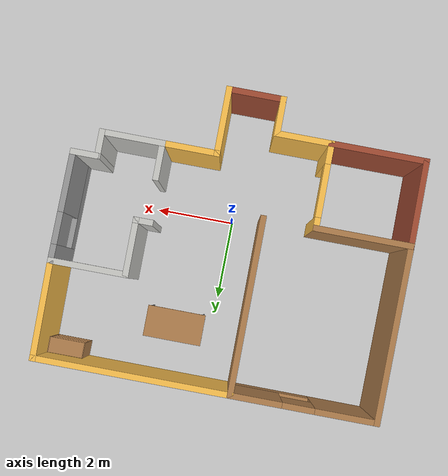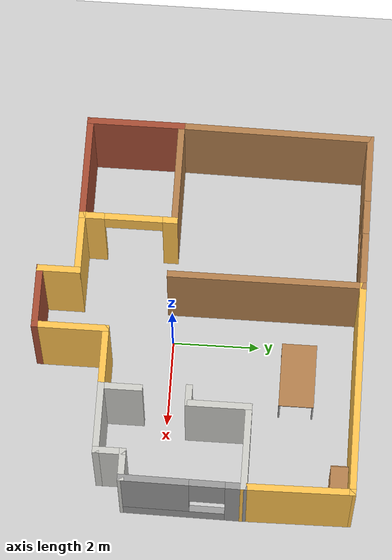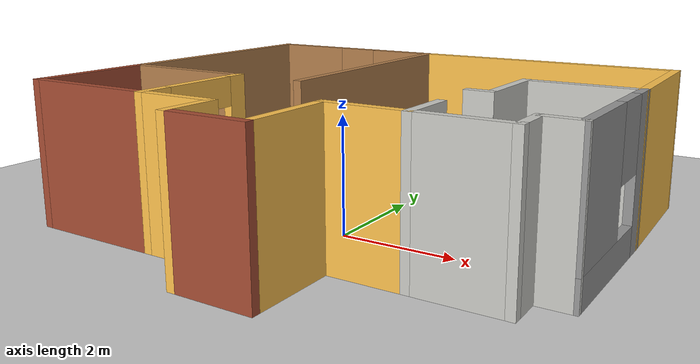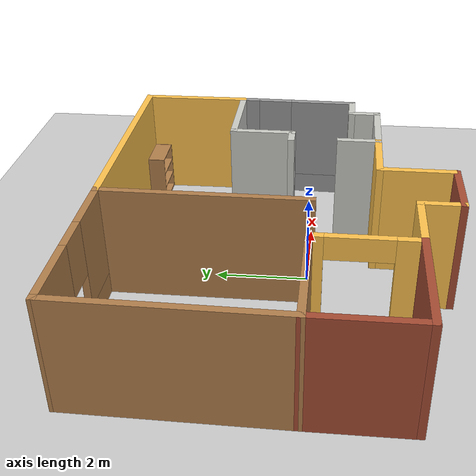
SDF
<sdf version="1.6">
 <world name="default">
  <light name="sun" type="directional">
   <pose>0 0 10 0 -0 0</pose>
   <diffuse>0.8 0.8 0.8 1</diffuse>
   <specular>0.2 0.2 0.2 1</specular>
   <attenuation>
    <range>1000</range>
    <constant>0.9</constant>
    <linear>0.01</linear>
    <quadratic>0.001</quadratic>
   </attenuation>
   <direction>-0.5 0.1 -0.9</direction>
  </light>
  <model name="ground_plane">
   <static>1</static>
   <link name="link">
    <collision name="collision">
     <geometry><plane><normal>0 0 1</normal><size>100 100</size></plane></geometry>
     <surface><friction><ode><mu>100</mu><mu2>50</mu2></ode></friction></surface>
    </collision>
    <visual name="visual">
     <cast_shadows>0</cast_shadows>
     <geometry><plane><normal>0 0 1</normal><size>100 100</size></plane></geometry>
     <material>
      <script><uri>file://media/materials/scripts/gazebo.material</uri><name>Gazebo/Grey</name></script>
     </material>
    </visual>
   </link>
  </model>
  <gravity>0 0 -9.8</gravity>
  <magnetic_field>6e-06 2.3e-05 -4.2e-05</magnetic_field>
  <atmosphere type="adiabatic"/>
  <physics name="default_physics" default="0" type="ode">
   <max_step_size>0.001</max_step_size>
   <real_time_factor>1</real_time_factor>
   <real_time_update_rate>1000</real_time_update_rate>
  </physics>
  <scene><ambient>0.4 0.4 0.4 1</ambient><background>0.7 0.7 0.7 1</background><shadows>1</shadows></scene>
  <audio><device>default</device></audio>
  <spherical_coordinates>
   <surface_model>EARTH_WGS84</surface_model>
   <latitude_deg>0</latitude_deg>
   <longitude_deg>0</longitude_deg>
   <elevation>0</elevation>
   <heading_deg>0</heading_deg>
  </spherical_coordinates>
  <model name="new_world">
   <pose>-0.143743 0.609384 0 0 -0 0</pose>
   <link name="Wall_0">
    <pose>-2.41461 3.64954 0 0 -0 0</pose>
    <visual name="Wall_0_Visual_0">
     <pose>-1.07287 0 1.25 0 -0 0</pose>
     <geometry><box><size>1.60426 0.15 2.5</size></box></geometry>
     <material>
      <script><uri>file://media/materials/scripts/gazebo.material</uri><name>Gazebo/Wood</name></script>
      <ambient>1 1 1 1</ambient>
     </material>
     <meta><layer>0</layer></meta>
    </visual>
    <collision name="Wall_0_Collision_0">
     <geometry><box><size>1.60426 0.15 2.5</size></box></geometry>
     <pose>-1.07287 0 1.25 0 -0 0</pose>
    </collision>
    <visual name="Wall_0_Visual_1">
     <pose>0.802129 0 0.25 0 -0 0</pose>
     <geometry><box><size>2.14574 0.15 0.5</size></box></geometry>
     <material>
      <script><uri>file://media/materials/scripts/gazebo.material</uri><name>Gazebo/Wood</name></script>
      <ambient>1 1 1 1</ambient>
     </material>
     <meta><layer>0</layer></meta>
    </visual>
    <collision name="Wall_0_Collision_1">
     <geometry><box><size>2.14574 0.15 0.5</size></box></geometry>
     <pose>0.802129 0 0.25 0 -0 0</pose>
    </collision>
    <visual name="Wall_0_Visual_2">
     <pose>1.20213 0 1.5 0 -0 0</pose>
     <geometry><box><size>1.34574 0.15 2</size></box></geometry>
     <material>
      <script><uri>file://media/materials/scripts/gazebo.material</uri><name>Gazebo/Wood</name></script>
      <ambient>1 1 1 1</ambient>
     </material>
     <meta><layer>0</layer></meta>
    </visual>
    <collision name="Wall_0_Collision_2">
     <geometry><box><size>1.34574 0.15 2</size></box></geometry>
     <pose>1.20213 0 1.5 0 -0 0</pose>
    </collision>
    <visual name="Wall_0_Visual_3">
     <pose>0.129259 0 1.9 0 -0 0</pose>
     <geometry><box><size>0.8 0.15 1.2</size></box></geometry>
     <material>
      <script><uri>file://media/materials/scripts/gazebo.material</uri><name>Gazebo/Wood</name></script>
      <ambient>1 1 1 1</ambient>
     </material>
     <meta><layer>0</layer></meta>
    </visual>
    <collision name="Wall_0_Collision_3">
     <geometry><box><size>0.8 0.15 1.2</size></box></geometry>
     <pose>0.129259 0 1.9 0 -0 0</pose>
    </collision>
   </link>
   <link name="Wall_1">
    <collision name="Wall_1_Collision">
     <geometry><box><size>5 0.15 2.5</size></box></geometry>
     <pose>0 0 1.25 0 -0 0</pose>
    </collision>
    <visual name="Wall_1_Visual">
     <pose>0 0 1.25 0 -0 0</pose>
     <geometry><box><size>5 0.15 2.5</size></box></geometry>
     <material>
      <script><uri>file://media/materials/scripts/gazebo.material</uri><name>Gazebo/Grey</name></script>
      <ambient>1 0.764706 0.305882 1</ambient>
     </material>
     <meta><layer>0</layer></meta>
    </visual>
    <pose>1.81039 3.64954 0 0 -0 0</pose>
   </link>
   <link name="Wall_10">
    <collision name="Wall_10_Collision">
     <geometry><box><size>2.5 0.15 2.5</size></box></geometry>
     <pose>0 0 1.25 0 -0 0</pose>
    </collision>
    <visual name="Wall_10_Visual">
     <pose>0 0 1.25 0 -0 0</pose>
     <geometry><box><size>2.5 0.15 2.5</size></box></geometry>
     <material>
      <script><uri>file://media/materials/scripts/gazebo.material</uri><name>Gazebo/Bricks</name></script>
      <ambient>1 1 1 1</ambient>
     </material>
     <meta><layer>0</layer></meta>
    </visual>
    <pose>-3.08961 -2.80045 0 0 -0 3.14159</pose>
   </link>
   <link name="Wall_11">
    <collision name="Wall_11_Collision">
     <geometry><box><size>2.25 0.15 2.5</size></box></geometry>
     <pose>0 0 1.25 0 -0 0</pose>
    </collision>
    <visual name="Wall_11_Visual">
     <pose>0 0 1.25 0 -0 0</pose>
     <geometry><box><size>2.25 0.15 2.5</size></box></geometry>
     <material>
      <script><uri>file://media/materials/scripts/gazebo.material</uri><name>Gazebo/Bricks</name></script>
      <ambient>1 1 1 1</ambient>
     </material>
     <meta><layer>0</layer></meta>
    </visual>
    <pose>-4.26461 -1.75046 0 0 -0 1.5708</pose>
   </link>
   <link name="Wall_12">
    <collision name="Wall_12_Collision">
     <geometry><box><size>4.50029 0.15 2.5</size></box></geometry>
     <pose>0 0 1.25 0 -0 0</pose>
    </collision>
    <visual name="Wall_12_Visual">
     <pose>0 0 1.25 0 -0 0</pose>
     <geometry><box><size>4.50029 0.15 2.5</size></box></geometry>
     <material>
      <script><uri>file://media/materials/scripts/gazebo.material</uri><name>Gazebo/Wood</name></script>
      <ambient>1 1 1 1</ambient>
     </material>
     <meta><layer>0</layer></meta>
    </visual>
    <pose>-4.23961 1.47454 0 0 -0 1.5593</pose>
   </link>
   <link name="Wall_15">
    <collision name="Wall_15_Collision">
     <geometry><box><size>2.5 0.15 2.5</size></box></geometry>
     <pose>0 0 1.25 0 -0 0</pose>
    </collision>
    <visual name="Wall_15_Visual">
     <pose>0 0 1.25 0 -0 0</pose>
     <geometry><box><size>2.5 0.15 2.5</size></box></geometry>
     <material>
      <script><uri>file://media/materials/scripts/gazebo.material</uri><name>Gazebo/Wood</name></script>
      <ambient>1 1 1 1</ambient>
     </material>
     <meta><layer>0</layer></meta>
    </visual>
    <pose>-3.08961 -0.700455 0 0 -0 0</pose>
   </link>
   <link name="Wall_17">
    <collision name="Wall_17_Collision">
     <geometry><box><size>4.5 0.15 2.5</size></box></geometry>
     <pose>0 0 1.25 0 -0 0</pose>
    </collision>
    <visual name="Wall_17_Visual">
     <pose>0 0 1.25 0 -0 0</pose>
     <geometry><box><size>4.5 0.15 2.5</size></box></geometry>
     <material>
      <script><uri>file://media/materials/scripts/gazebo.material</uri><name>Gazebo/Wood</name></script>
      <ambient>1 1 1 1</ambient>
     </material>
     <meta><layer>0</layer></meta>
    </visual>
    <pose>-0.614608 1.47454 0 0 -0 -1.5708</pose>
   </link>
   <link name="Wall_19">
    <pose>-1.91461 -1.75046 0 0 -0 -1.5708</pose>
    <visual name="Wall_19_Visual_0">
     <pose>-0.952313 0 1.25 0 -0 0</pose>
     <geometry><box><size>0.345374 0.15 2.5</size></box></geometry>
     <material>
      <script><uri>file://media/materials/scripts/gazebo.material</uri><name>Gazebo/Grey</name></script>
      <ambient>1 0.764706 0.305882 1</ambient>
     </material>
     <meta><layer>0</layer></meta>
    </visual>
    <collision name="Wall_19_Collision_0">
     <geometry><box><size>0.345374 0.15 2.5</size></box></geometry>
     <pose>-0.952313 0 1.25 0 -0 0</pose>
    </collision>
    <visual name="Wall_19_Visual_1">
     <pose>0.833759 0 1.25 0 -0 0</pose>
     <geometry><box><size>0.582481 0.15 2.5</size></box></geometry>
     <material>
      <script><uri>file://media/materials/scripts/gazebo.material</uri><name>Gazebo/Grey</name></script>
      <ambient>1 0.764706 0.305882 1</ambient>
     </material>
     <meta><layer>0</layer></meta>
    </visual>
    <collision name="Wall_19_Collision_1">
     <geometry><box><size>0.582481 0.15 2.5</size></box></geometry>
     <pose>0.833759 0 1.25 0 -0 0</pose>
    </collision>
    <visual name="Wall_19_Visual_2">
     <pose>-0.118554 0 2.25 0 -0 0</pose>
     <geometry><box><size>1.32214 0.15 0.5</size></box></geometry>
     <material>
      <script><uri>file://media/materials/scripts/gazebo.material</uri><name>Gazebo/Grey</name></script>
      <ambient>1 0.764706 0.305882 1</ambient>
     </material>
     <meta><layer>0</layer></meta>
    </visual>
    <collision name="Wall_19_Collision_2">
     <geometry><box><size>1.32214 0.15 0.5</size></box></geometry>
     <pose>-0.118554 0 2.25 0 -0 0</pose>
    </collision>
   </link>
   <link name="Wall_21">
    <collision name="Wall_21_Collision">
     <geometry><box><size>1.5 0.15 2.5</size></box></geometry>
     <pose>0 0 1.25 0 -0 0</pose>
    </collision>
    <visual name="Wall_21_Visual">
     <pose>0 0 1.25 0 -0 0</pose>
     <geometry><box><size>1.5 0.15 2.5</size></box></geometry>
     <material>
      <script><uri>file://media/materials/scripts/gazebo.material</uri><name>Gazebo/Grey</name></script>
      <ambient>1 0.764706 0.305882 1</ambient>
     </material>
     <meta><layer>0</layer></meta>
    </visual>
    <pose>1.46039 -2.05045 0 0 -0 0</pose>
   </link>
   <link name="Wall_22">
    <collision name="Wall_22_Collision">
     <geometry><box><size>1.65 0.15 2.5</size></box></geometry>
     <pose>0 0 1.25 0 -0 0</pose>
    </collision>
    <visual name="Wall_22_Visual">
     <pose>0 0 1.25 0 -0 0</pose>
     <geometry><box><size>1.65 0.15 2.5</size></box></geometry>
     <material>
      <script><uri>file://media/materials/scripts/gazebo.material</uri><name>Gazebo/CeilingTiled</name></script>
      <ambient>1 1 1 1</ambient>
     </material>
     <meta><layer>0</layer></meta>
    </visual>
    <pose>2.88539 -2.05045 0 0 -0 0</pose>
   </link>
   <link name="Wall_24">
    <collision name="Wall_24_Collision">
     <geometry><box><size>1 0.15 2.5</size></box></geometry>
     <pose>0 0 1.25 0 -0 0</pose>
    </collision>
    <visual name="Wall_24_Visual">
     <pose>0 0 1.25 0 -0 0</pose>
     <geometry><box><size>1 0.15 2.5</size></box></geometry>
     <material>
      <script><uri>file://media/materials/scripts/gazebo.material</uri><name>Gazebo/CeilingTiled</name></script>
      <ambient>1 1 1 1</ambient>
     </material>
     <meta><layer>0</layer></meta>
    </visual>
    <pose>2.13539 -1.62546 0 0 -0 1.5708</pose>
   </link>
   <link name="Wall_28">
    <collision name="Wall_28_Collision">
     <geometry><box><size>0.5 0.15 2.5</size></box></geometry>
     <pose>0 0 1.25 0 -0 0</pose>
    </collision>
    <visual name="Wall_28_Visual">
     <pose>0 0 1.25 0 -0 0</pose>
     <geometry><box><size>0.5 0.15 2.5</size></box></geometry>
     <material>
      <script><uri>file://media/materials/scripts/gazebo.material</uri><name>Gazebo/CeilingTiled</name></script>
      <ambient>1 1 1 1</ambient>
     </material>
     <meta><layer>0</layer></meta>
    </visual>
    <pose>2.23956 -0.091427 0 0 -0 0</pose>
   </link>
   <link name="Wall_29">
    <collision name="Wall_29_Collision">
     <geometry><box><size>1.5 0.15 2.5</size></box></geometry>
     <pose>0 0 1.25 0 -0 0</pose>
    </collision>
    <visual name="Wall_29_Visual">
     <pose>0 0 1.25 0 -0 0</pose>
     <geometry><box><size>1.5 0.15 2.5</size></box></geometry>
     <material>
      <script><uri>file://media/materials/scripts/gazebo.material</uri><name>Gazebo/CeilingTiled</name></script>
      <ambient>1 1 1 1</ambient>
     </material>
     <meta><layer>0</layer></meta>
    </visual>
    <pose>2.41456 0.583573 0 0 -0 1.5708</pose>
   </link>
   <link name="Wall_3">
    <collision name="Wall_3_Collision">
     <geometry><box><size>0.75 0.15 2.5</size></box></geometry>
     <pose>0 0 1.25 0 -0 0</pose>
    </collision>
    <visual name="Wall_3_Visual">
     <pose>0 0 1.25 0 -0 0</pose>
     <geometry><box><size>0.75 0.15 2.5</size></box></geometry>
     <material>
      <script><uri>file://media/materials/scripts/gazebo.material</uri><name>Gazebo/CeilingTiled</name></script>
      <ambient>1 1 1 1</ambient>
     </material>
     <meta><layer>0</layer></meta>
    </visual>
    <pose>3.93539 -1.45045 0 0 -0 3.14159</pose>
   </link>
   <link name="Wall_35">
    <collision name="Wall_35_Collision">
     <geometry><box><size>2 0.15 2.5</size></box></geometry>
     <pose>0 0 1.25 0 -0 0</pose>
    </collision>
    <visual name="Wall_35_Visual">
     <pose>0 0 1.25 0 -0 0</pose>
     <geometry><box><size>2 0.15 2.5</size></box></geometry>
     <material>
      <script><uri>file://media/materials/scripts/gazebo.material</uri><name>Gazebo/CeilingTiled</name></script>
      <ambient>1 1 1 1</ambient>
     </material>
     <meta><layer>0</layer></meta>
    </visual>
    <pose>3.33956 1.25857 0 0 -0 0</pose>
   </link>
   <link name="Wall_37">
    <collision name="Wall_37_Collision">
     <geometry><box><size>2.54115 0.15 2.5</size></box></geometry>
     <pose>0 0 1.25 0 -0 0</pose>
    </collision>
    <visual name="Wall_37_Visual">
     <pose>0 0 1.25 0 -0 0</pose>
     <geometry><box><size>2.54115 0.15 2.5</size></box></geometry>
     <material>
      <script><uri>file://media/materials/scripts/gazebo.material</uri><name>Gazebo/Grey</name></script>
      <ambient>1 0.764706 0.305882 1</ambient>
     </material>
     <meta><layer>0</layer></meta>
    </visual>
    <pose>4.24997 2.45406 0 0 -0 -1.5586</pose>
   </link>
   <link name="Wall_38">
    <pose>4.24997 -0.095941 0 0 -0 -1.58156</pose>
    <visual name="Wall_38_Visual_0">
     <pose>-1.18879 0 1.25 0 -0 0</pose>
     <geometry><box><size>0.481602 0.15 2.5</size></box></geometry>
     <material>
      <script><uri>file://media/materials/scripts/gazebo.material</uri><name>Gazebo/Grey</name></script>
      <ambient>1 1 1 1</ambient>
     </material>
     <meta><layer>0</layer></meta>
    </visual>
    <collision name="Wall_38_Collision_0">
     <geometry><box><size>0.481602 0.15 2.5</size></box></geometry>
     <pose>-1.18879 0 1.25 0 -0 0</pose>
    </collision>
    <visual name="Wall_38_Visual_1">
     <pose>0.240801 0 0.25 0 -0 0</pose>
     <geometry><box><size>2.37758 0.15 0.5</size></box></geometry>
     <material>
      <script><uri>file://media/materials/scripts/gazebo.material</uri><name>Gazebo/Grey</name></script>
      <ambient>1 1 1 1</ambient>
     </material>
     <meta><layer>0</layer></meta>
    </visual>
    <collision name="Wall_38_Collision_1">
     <geometry><box><size>2.37758 0.15 0.5</size></box></geometry>
     <pose>0.240801 0 0.25 0 -0 0</pose>
    </collision>
    <visual name="Wall_38_Visual_2">
     <pose>0.640801 0 1.5 0 -0 0</pose>
     <geometry><box><size>1.57758 0.15 2</size></box></geometry>
     <material>
      <script><uri>file://media/materials/scripts/gazebo.material</uri><name>Gazebo/Grey</name></script>
      <ambient>1 1 1 1</ambient>
     </material>
     <meta><layer>0</layer></meta>
    </visual>
    <collision name="Wall_38_Collision_2">
     <geometry><box><size>1.57758 0.15 2</size></box></geometry>
     <pose>0.640801 0 1.5 0 -0 0</pose>
    </collision>
    <visual name="Wall_38_Visual_3">
     <pose>-0.54799 0 1.9 0 -0 0</pose>
     <geometry><box><size>0.8 0.15 1.2</size></box></geometry>
     <material>
      <script><uri>file://media/materials/scripts/gazebo.material</uri><name>Gazebo/Grey</name></script>
      <ambient>1 1 1 1</ambient>
     </material>
     <meta><layer>0</layer></meta>
    </visual>
    <collision name="Wall_38_Collision_3">
     <geometry><box><size>0.8 0.15 1.2</size></box></geometry>
     <pose>-0.54799 0 1.9 0 -0 0</pose>
    </collision>
   </link>
   <link name="Wall_4">
    <collision name="Wall_4_Collision">
     <geometry><box><size>0.75 0.15 2.5</size></box></geometry>
     <pose>0 0 1.25 0 -0 0</pose>
    </collision>
    <visual name="Wall_4_Visual">
     <pose>0 0 1.25 0 -0 0</pose>
     <geometry><box><size>0.75 0.15 2.5</size></box></geometry>
     <material>
      <script><uri>file://media/materials/scripts/gazebo.material</uri><name>Gazebo/CeilingTiled</name></script>
      <ambient>1 1 1 1</ambient>
     </material>
     <meta><layer>0</layer></meta>
    </visual>
    <pose>3.63539 -1.75046 0 0 -0 -1.5708</pose>
   </link>
   <link name="Wall_6">
    <collision name="Wall_6_Collision">
     <geometry><box><size>1.75 0.15 2.5</size></box></geometry>
     <pose>0 0 1.25 0 -0 0</pose>
    </collision>
    <visual name="Wall_6_Visual">
     <pose>0 0 1.25 0 -0 0</pose>
     <geometry><box><size>1.75 0.15 2.5</size></box></geometry>
     <material>
      <script><uri>file://media/materials/scripts/gazebo.material</uri><name>Gazebo/Grey</name></script>
      <ambient>1 0.764706 0.305882 1</ambient>
     </material>
     <meta><layer>0</layer></meta>
    </visual>
    <pose>0.785392 -2.85046 0 0 -0 -1.5708</pose>
   </link>
   <link name="Wall_7">
    <collision name="Wall_7_Collision">
     <geometry><box><size>1.5 0.15 2.5</size></box></geometry>
     <pose>0 0 1.25 0 -0 0</pose>
    </collision>
    <visual name="Wall_7_Visual">
     <pose>0 0 1.25 0 -0 0</pose>
     <geometry><box><size>1.5 0.15 2.5</size></box></geometry>
     <material>
      <script><uri>file://media/materials/scripts/gazebo.material</uri><name>Gazebo/Bricks</name></script>
      <ambient>1 1 1 1</ambient>
     </material>
     <meta><layer>0</layer></meta>
    </visual>
    <pose>0.110392 -3.65046 0 0 -0 3.14159</pose>
   </link>
   <link name="Wall_8">
    <collision name="Wall_8_Collision">
     <geometry><box><size>1 0.15 2.5</size></box></geometry>
     <pose>0 0 1.25 0 -0 0</pose>
    </collision>
    <visual name="Wall_8_Visual">
     <pose>0 0 1.25 0 -0 0</pose>
     <geometry><box><size>1 0.15 2.5</size></box></geometry>
     <material>
      <script><uri>file://media/materials/scripts/gazebo.material</uri><name>Gazebo/Grey</name></script>
      <ambient>1 0.764706 0.305882 1</ambient>
     </material>
     <meta><layer>0</layer></meta>
    </visual>
    <pose>-0.564608 -3.22546 0 0 -0 1.5708</pose>
   </link>
   <link name="Wall_9">
    <collision name="Wall_9_Collision">
     <geometry><box><size>1.5 0.15 2.5</size></box></geometry>
     <pose>0 0 1.25 0 -0 0</pose>
    </collision>
    <visual name="Wall_9_Visual">
     <pose>0 0 1.25 0 -0 0</pose>
     <geometry><box><size>1.5 0.15 2.5</size></box></geometry>
     <material>
      <script><uri>file://media/materials/scripts/gazebo.material</uri><name>Gazebo/Grey</name></script>
      <ambient>1 0.764706 0.305882 1</ambient>
     </material>
     <meta><layer>0</layer></meta>
    </visual>
    <pose>-1.23961 -2.80045 0 0 -0 3.14159</pose>
   </link>
   <static>1</static>
  </model>
  <model name="bookshelf">
   <static>1</static>
   <link name="link">
    <inertial><mass>1</mass></inertial>
    <collision name="back">
     <pose>0 0.005 0.6 0 -0 0</pose>
     <geometry><box><size>0.9 0.01 1.2</size></box></geometry>
    </collision>
    <visual name="visual1">
     <pose>0 0.005 0.6 0 -0 0</pose>
     <geometry><box><size>0.9 0.01 1.2</size></box></geometry>
     <material>
      <script><uri>file://media/materials/scripts/gazebo.material</uri><name>Gazebo/Wood</name></script>
     </material>
    </visual>
    <collision name="left_side">
     <pose>0.45 -0.195 0.6 0 -0 0</pose>
     <geometry><box><size>0.02 0.4 1.2</size></box></geometry>
    </collision>
    <visual name="visual2">
     <pose>0.45 -0.195 0.6 0 -0 0</pose>
     <geometry><box><size>0.02 0.4 1.2</size></box></geometry>
     <material>
      <script><uri>file://media/materials/scripts/gazebo.material</uri><name>Gazebo/Wood</name></script>
     </material>
    </visual>
    <collision name="right_side">
     <pose>-0.45 -0.195 0.6 0 -0 0</pose>
     <geometry><box><size>0.02 0.4 1.2</size></box></geometry>
    </collision>
    <visual name="visual3">
     <pose>-0.45 -0.195 0.6 0 -0 0</pose>
     <geometry><box><size>0.02 0.4 1.2</size></box></geometry>
     <material>
      <script><uri>file://media/materials/scripts/gazebo.material</uri><name>Gazebo/Wood</name></script>
     </material>
    </visual>
    <collision name="bottom">
     <pose>0 -0.195 0.03 0 -0 0</pose>
     <geometry><box><size>0.88 0.4 0.06</size></box></geometry>
    </collision>
    <visual name="visual4">
     <pose>0 -0.195 0.03 0 -0 0</pose>
     <geometry><box><size>0.88 0.4 0.06</size></box></geometry>
     <material>
      <script><uri>file://media/materials/scripts/gazebo.material</uri><name>Gazebo/Wood</name></script>
     </material>
    </visual>
    <collision name="top">
     <pose>0 -0.195 1.19 0 -0 0</pose>
     <geometry><box><size>0.88 0.4 0.02</size></box></geometry>
    </collision>
    <visual name="visual5">
     <pose>0 -0.195 1.19 0 -0 0</pose>
     <geometry><box><size>0.88 0.4 0.02</size></box></geometry>
     <material>
      <script><uri>file://media/materials/scripts/gazebo.material</uri><name>Gazebo/Wood</name></script>
     </material>
    </visual>
    <collision name="low_shelf">
     <pose>0 -0.195 0.43 0 -0 0</pose>
     <geometry><box><size>0.88 0.4 0.02</size></box></geometry>
    </collision>
    <visual name="visual6">
     <pose>0 -0.195 0.43 0 -0 0</pose>
     <geometry><box><size>0.88 0.4 0.02</size></box></geometry>
     <material>
      <script><uri>file://media/materials/scripts/gazebo.material</uri><name>Gazebo/Wood</name></script>
     </material>
    </visual>
    <collision name="high_shelf">
     <pose>0 -0.195 0.8 0 -0 0</pose>
     <geometry><box><size>0.88 0.4 0.02</size></box></geometry>
    </collision>
    <visual name="visual7">
     <pose>0 -0.195 0.8 0 -0 0</pose>
     <geometry><box><size>0.88 0.4 0.02</size></box></geometry>
     <material>
      <script><uri>file://media/materials/scripts/gazebo.material</uri><name>Gazebo/Wood</name></script>
     </material>
    </visual>
   </link>
   <pose>3.56294 4.1779 -0 0 -0 0</pose>
  </model>
  <model name="table">
   <static>1</static>
   <link name="link">
    <collision name="surface">
     <pose>0 0 1 0 -0 0</pose>
     <geometry><box><size>1.5 0.8 0.03</size></box></geometry>
     <surface><friction><ode><mu>0.6</mu><mu2>0.6</mu2></ode></friction></surface>
    </collision>
    <visual name="visual1">
     <pose>0 0 1 0 -0 0</pose>
     <geometry><box><size>1.5 0.8 0.03</size></box></geometry>
     <material>
      <script><uri>file://media/materials/scripts/gazebo.material</uri><name>Gazebo/Wood</name></script>
     </material>
    </visual>
    <collision name="front_left_leg">
     <pose>0.68 0.38 0.5 0 -0 0</pose>
     <geometry><cylinder><radius>0.02</radius><length>1</length></cylinder></geometry>
    </collision>
    <visual name="front_left_leg">
     <pose>0.68 0.38 0.5 0 -0 0</pose>
     <geometry><cylinder><radius>0.02</radius><length>1</length></cylinder></geometry>
     <material>
      <script><uri>file://media/materials/scripts/gazebo.material</uri><name>Gazebo/Grey</name></script>
     </material>
    </visual>
    <collision name="front_right_leg">
     <pose>0.68 -0.38 0.5 0 -0 0</pose>
     <geometry><cylinder><radius>0.02</radius><length>1</length></cylinder></geometry>
    </collision>
    <visual name="front_right_leg">
     <pose>0.68 -0.38 0.5 0 -0 0</pose>
     <geometry><cylinder><radius>0.02</radius><length>1</length></cylinder></geometry>
     <material>
      <script><uri>file://media/materials/scripts/gazebo.material</uri><name>Gazebo/Grey</name></script>
     </material>
    </visual>
    <collision name="back_right_leg">
     <pose>-0.68 -0.38 0.5 0 -0 0</pose>
     <geometry><cylinder><radius>0.02</radius><length>1</length></cylinder></geometry>
    </collision>
    <visual name="back_right_leg">
     <pose>-0.68 -0.38 0.5 0 -0 0</pose>
     <geometry><cylinder><radius>0.02</radius><length>1</length></cylinder></geometry>
     <material>
      <script><uri>file://media/materials/scripts/gazebo.material</uri><name>Gazebo/Grey</name></script>
     </material>
    </visual>
    <collision name="back_left_leg">
     <pose>-0.68 0.38 0.5 0 -0 0</pose>
     <geometry><cylinder><radius>0.02</radius><length>1</length></cylinder></geometry>
    </collision>
    <visual name="back_left_leg">
     <pose>-0.68 0.38 0.5 0 -0 0</pose>
     <geometry><cylinder><radius>0.02</radius><length>1</length></cylinder></geometry>
     <material>
      <script><uri>file://media/materials/scripts/gazebo.material</uri><name>Gazebo/Grey</name></script>
     </material>
    </visual>
   </link>
   <pose>0.958431 2.92769 0 0 -0 0</pose>
  </model>
 </world>
</sdf>
